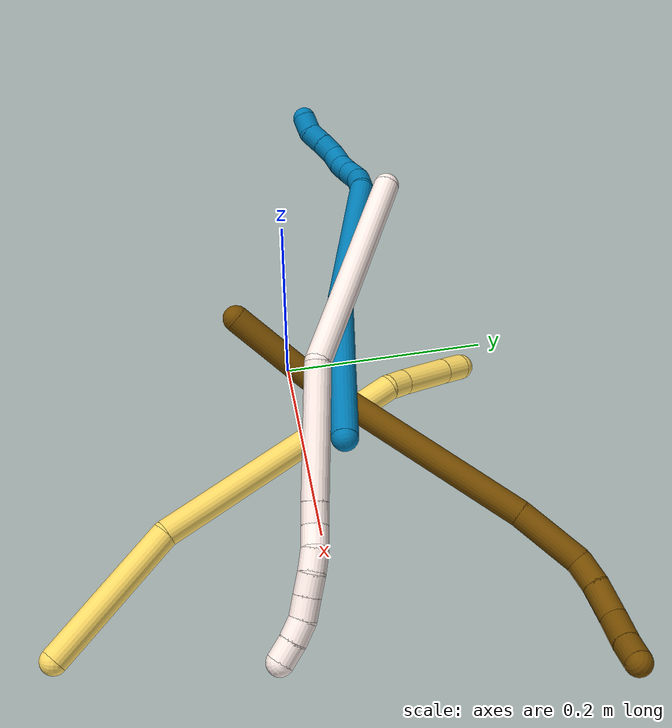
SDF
<sdf version="1.7">
 <world name="default">
  <model name="photoneo_s_sensor">
   <static>1</static>
   <pose>0 0 2 1.57079 1.57079 3.14159</pose>
   <link name="link">
    <inertial><mass>0.1</mass></inertial>
    <sensor name="sensor" type="depth">
     <update_rate>30</update_rate>
     <camera>
      <horizontal_fov>1.22</horizontal_fov>
      <image><width>1920</width><height>1200</height><format>B8G8R8</format></image>
      <clip><near>0.1</near><far>4</far></clip>
      <depth_camera><output>points</output></depth_camera>
     </camera>
     <plugin name="camera_plugin" filename="libgazebo_ros_depth_camera.so">
      <baseline>0.2</baseline>
      <alwaysOn>1</alwaysOn>
      <updateRate>0.0</updateRate>
      <cameraName>camera_ir</cameraName>
      <imageTopicName>/camera/color/image_raw</imageTopicName>
      <cameraInfoTopicName>/camera/color/camera_info</cameraInfoTopicName>
      <depthImageTopicName>/camera/depth/image_raw</depthImageTopicName>
      <depthImageCameraInfoTopicName>/camera/depth/camera_info</depthImageCameraInfoTopicName>
      <pointCloudTopicName>/camera/depth/points</pointCloudTopicName>
      <frameName>fr_optical</frameName>
      <pointCloudCutoff>0.1</pointCloudCutoff>
      <pointCloudCutoffMax>2.0</pointCloudCutoffMax>
      <distortionK1>0</distortionK1>
      <distortionK2>0</distortionK2>
      <distortionK3>0</distortionK3>
      <distortionT1>0</distortionT1>
      <distortionT2>0</distortionT2>
      <CxPrime>0</CxPrime>
      <Cx>0</Cx>
      <Cy>0</Cy>
      <focalLength>0</focalLength>
      <hackBaseline>0</hackBaseline>
     </plugin>
    </sensor>
   </link>
  </model>
  <model name="bin">
   <static>1</static>
   <link name="bottom">
    <collision name="collision-bottom">
     <pose>0 0 -0.01 0 -0 0</pose>
     <geometry><box><size>0.8 0.6 0.02</size></box></geometry>
     <surface>
      <friction><ode><mu>100</mu><mu2>100</mu2></ode></friction>
      <contact><collide_bitmask>65535</collide_bitmask></contact>
     </surface>
    </collision>
   </link>
   <link name="west_wall">
    <collision name="collision-west_wall">
     <pose>-0.41 0 0.1 0 -0 0</pose>
     <geometry><box><size>0.02 0.6 0.2</size></box></geometry>
     <surface>
      <friction><ode><mu>100</mu><mu2>100</mu2></ode></friction>
      <contact><collide_bitmask>65535</collide_bitmask></contact>
     </surface>
    </collision>
   </link>
   <link name="east_wall">
    <collision name="collision-east_wall">
     <pose>0.41 0 0.1 0 -0 0</pose>
     <geometry><box><size>0.02 0.6 0.2</size></box></geometry>
     <surface>
      <friction><ode><mu>100</mu><mu2>100</mu2></ode></friction>
      <contact><collide_bitmask>65535</collide_bitmask></contact>
     </surface>
    </collision>
   </link>
   <link name="south_wall">
    <collision name="collision-south_wall">
     <pose>0 -0.31 0.1 0 -0 0</pose>
     <geometry><box><size>0.8 0.02 0.2</size></box></geometry>
     <surface>
      <friction><ode><mu>100</mu><mu2>100</mu2></ode></friction>
      <contact><collide_bitmask>65535</collide_bitmask></contact>
     </surface>
    </collision>
   </link>
   <link name="north_wall">
    <collision name="collision-north_wall">
     <pose>0 0.31 0.1 0 -0 0</pose>
     <geometry><box><size>0.8 0.02 0.2</size></box></geometry>
     <surface>
      <friction><ode><mu>100</mu><mu2>100</mu2></ode></friction>
      <contact><collide_bitmask>65535</collide_bitmask></contact>
     </surface>
    </collision>
   </link>
  </model>
  <model name="5">
   <static>0</static>
   <link name="5">
    <collision name="collision-cylinder-e_1_1_4">
     <pose>0.016483 0.051902 -0.045094 -2.28612 0.235288 -0.507335</pose>
     <geometry><cylinder><radius>0.0125</radius><length>0.141407</length></cylinder></geometry>
     <surface>
      <friction><ode><mu>1.16</mu><mu2>1.16</mu2><slip1>0</slip1><slip2>0</slip2></ode></friction>
      <contact><ode><kp>1e+06</kp><kd>1</kd><max_vel>0</max_vel><min_depth>0.001</min_depth></ode></contact>
     </surface>
    </collision>
    <visual name="visual-cylinder-e_1_1_4">
     <pose>0.016483 0.051902 -0.045094 -2.28612 0.235288 -0.507335</pose>
     <geometry><cylinder><radius>0.0125</radius><length>0.141407</length></cylinder></geometry>
     <material><ambient>1 0.858824 0.4 1</ambient></material>
    </visual>
    <collision name="collision-cylinder-e_2_4_5">
     <pose>0.043471 0.177914 -0.195742 -2.52946 0.081278 -0.255949</pose>
     <geometry><cylinder><radius>0.0125</radius><length>0.258801</length></cylinder></geometry>
     <surface>
      <friction><ode><mu>1.16</mu><mu2>1.16</mu2><slip1>0</slip1><slip2>0</slip2></ode></friction>
      <contact><ode><kp>1e+06</kp><kd>1</kd><max_vel>0</max_vel><min_depth>0.001</min_depth></ode></contact>
     </surface>
    </collision>
    <visual name="visual-cylinder-e_2_4_5">
     <pose>0.043471 0.177914 -0.195742 -2.52946 0.081278 -0.255949</pose>
     <geometry><cylinder><radius>0.0125</radius><length>0.258801</length></cylinder></geometry>
     <material><ambient>1 0.858824 0.4 1</ambient></material>
    </visual>
    <collision name="collision-cylinder-e_3_5_6">
     <pose>0.050892 0.257125 -0.309924 -2.60759 -0.29858 1.00549</pose>
     <geometry><cylinder><radius>0.0125</radius><length>0.020973</length></cylinder></geometry>
     <surface>
      <friction><ode><mu>1.16</mu><mu2>1.16</mu2><slip1>0</slip1><slip2>0</slip2></ode></friction>
      <contact><ode><kp>1e+06</kp><kd>1</kd><max_vel>0</max_vel><min_depth>0.001</min_depth></ode></contact>
     </surface>
    </collision>
    <visual name="visual-cylinder-e_3_5_6">
     <pose>0.050892 0.257125 -0.309924 -2.60759 -0.29858 1.00549</pose>
     <geometry><cylinder><radius>0.0125</radius><length>0.020973</length></cylinder></geometry>
     <material><ambient>1 0.858824 0.4 1</ambient></material>
    </visual>
    <collision name="collision-cylinder-e_4_6_7">
     <pose>0.040692 0.27398 -0.341637 -2.67069 -0.268066 1.02412</pose>
     <geometry><cylinder><radius>0.0125</radius><length>0.053731</length></cylinder></geometry>
     <surface>
      <friction><ode><mu>1.16</mu><mu2>1.16</mu2><slip1>0</slip1><slip2>0</slip2></ode></friction>
      <contact><ode><kp>1e+06</kp><kd>1</kd><max_vel>0</max_vel><min_depth>0.001</min_depth></ode></contact>
     </surface>
    </collision>
    <visual name="visual-cylinder-e_4_6_7">
     <pose>0.040692 0.27398 -0.341637 -2.67069 -0.268066 1.02412</pose>
     <geometry><cylinder><radius>0.0125</radius><length>0.053731</length></cylinder></geometry>
     <material><ambient>1 0.858824 0.4 1</ambient></material>
    </visual>
    <collision name="collision-cylinder-e_5_7_2">
     <pose>0.030085 0.291081 -0.375521 -2.68173 -0.281973 1.09014</pose>
     <geometry><cylinder><radius>0.0125</radius><length>0.025089</length></cylinder></geometry>
     <surface>
      <friction><ode><mu>1.16</mu><mu2>1.16</mu2><slip1>0</slip1><slip2>0</slip2></ode></friction>
      <contact><ode><kp>1e+06</kp><kd>1</kd><max_vel>0</max_vel><min_depth>0.001</min_depth></ode></contact>
     </surface>
    </collision>
    <visual name="visual-cylinder-e_5_7_2">
     <pose>0.030085 0.291081 -0.375521 -2.68173 -0.281973 1.09014</pose>
     <geometry><cylinder><radius>0.0125</radius><length>0.025089</length></cylinder></geometry>
     <material><ambient>1 0.858824 0.4 1</ambient></material>
    </visual>
    <collision name="collision-sphere-2">
     <pose>0.026595 0.296429 -0.386318 0 -0 0</pose>
     <geometry><sphere><radius>0.0125</radius></sphere></geometry>
     <surface>
      <friction><ode><mu>1.16</mu><mu2>1.16</mu2><slip1>0</slip1><slip2>0</slip2></ode></friction>
      <contact><ode><kp>1e+06</kp><kd>1</kd><max_vel>0</max_vel><min_depth>0.001</min_depth></ode></contact>
     </surface>
    </collision>
    <visual name="visual-sphere-2">
     <pose>0.026595 0.296429 -0.386318 0 -0 0</pose>
     <geometry><sphere><radius>0.0125</radius></sphere></geometry>
     <material><ambient>1 0.858824 0.4 1</ambient></material>
    </visual>
    <collision name="collision-sphere-7">
     <pose>0.033576 0.285733 -0.364724 0 -0 0</pose>
     <geometry><sphere><radius>0.0125</radius></sphere></geometry>
     <surface>
      <friction><ode><mu>1.16</mu><mu2>1.16</mu2><slip1>0</slip1><slip2>0</slip2></ode></friction>
      <contact><ode><kp>1e+06</kp><kd>1</kd><max_vel>0</max_vel><min_depth>0.001</min_depth></ode></contact>
     </surface>
    </collision>
    <visual name="visual-sphere-7">
     <pose>0.033576 0.285733 -0.364724 0 -0 0</pose>
     <geometry><sphere><radius>0.0125</radius></sphere></geometry>
     <material><ambient>1 0.858824 0.4 1</ambient></material>
    </visual>
    <collision name="collision-sphere-6">
     <pose>0.047808 0.262227 -0.318551 0 -0 0</pose>
     <geometry><sphere><radius>0.0125</radius></sphere></geometry>
     <surface>
      <friction><ode><mu>1.16</mu><mu2>1.16</mu2><slip1>0</slip1><slip2>0</slip2></ode></friction>
      <contact><ode><kp>1e+06</kp><kd>1</kd><max_vel>0</max_vel><min_depth>0.001</min_depth></ode></contact>
     </surface>
    </collision>
    <visual name="visual-sphere-6">
     <pose>0.047808 0.262227 -0.318551 0 -0 0</pose>
     <geometry><sphere><radius>0.0125</radius></sphere></geometry>
     <material><ambient>1 0.858824 0.4 1</ambient></material>
    </visual>
    <collision name="collision-sphere-5">
     <pose>0.053977 0.252024 -0.301297 0 -0 0</pose>
     <geometry><sphere><radius>0.0125</radius></sphere></geometry>
     <surface>
      <friction><ode><mu>1.16</mu><mu2>1.16</mu2><slip1>0</slip1><slip2>0</slip2></ode></friction>
      <contact><ode><kp>1e+06</kp><kd>1</kd><max_vel>0</max_vel><min_depth>0.001</min_depth></ode></contact>
     </surface>
    </collision>
    <visual name="visual-sphere-5">
     <pose>0.053977 0.252024 -0.301297 0 -0 0</pose>
     <geometry><sphere><radius>0.0125</radius></sphere></geometry>
     <material><ambient>1 0.858824 0.4 1</ambient></material>
    </visual>
    <collision name="collision-sphere-1">
     <geometry><sphere><radius>0.0125</radius></sphere></geometry>
     <surface>
      <friction><ode><mu>1.16</mu><mu2>1.16</mu2><slip1>0</slip1><slip2>0</slip2></ode></friction>
      <contact><ode><kp>1e+06</kp><kd>1</kd><max_vel>0</max_vel><min_depth>0.001</min_depth></ode></contact>
     </surface>
    </collision>
    <visual name="visual-sphere-1">
     <geometry><sphere><radius>0.0125</radius></sphere></geometry>
     <material><ambient>1 0.858824 0.4 1</ambient></material>
    </visual>
    <collision name="collision-sphere-4">
     <pose>0.032965 0.103805 -0.090187 0 -0 0</pose>
     <geometry><sphere><radius>0.0125</radius></sphere></geometry>
     <surface>
      <friction><ode><mu>1.16</mu><mu2>1.16</mu2><slip1>0</slip1><slip2>0</slip2></ode></friction>
      <contact><ode><kp>1e+06</kp><kd>1</kd><max_vel>0</max_vel><min_depth>0.001</min_depth></ode></contact>
     </surface>
    </collision>
    <visual name="visual-sphere-4">
     <pose>0.032965 0.103805 -0.090187 0 -0 0</pose>
     <geometry><sphere><radius>0.0125</radius></sphere></geometry>
     <material><ambient>1 0.858824 0.4 1</ambient></material>
    </visual>
    <inertial>
     <pose>0.035179 0.161601 -0.182625 0 -0 0</pose>
     <mass>0.5</mass>
     <inertia>
      <ixx>0.001154</ixx>
      <ixy>0</ixy>
      <ixz>0</ixz>
      <iyy>-0.001701</iyy>
      <iyz>0</iyz>
      <izz>-0.001218</izz>
     </inertia>
    </inertial>
   </link>
   <pose>0.289792 -0.245296 0.011496 0.695114 -1.32677 0.77757</pose>
  </model>
  <model name="9">
   <static>0</static>
   <link name="9">
    <collision name="collision-cylinder-e_1_1_4">
     <pose>-0.046738 5.5e-05 -0.074267 -3.14085 -0.561698 3.139</pose>
     <geometry><cylinder><radius>0.0125</radius><length>0.175499</length></cylinder></geometry>
     <surface>
      <friction><ode><mu>1.16</mu><mu2>1.16</mu2><slip1>0</slip1><slip2>0</slip2></ode></friction>
      <contact><ode><kp>1e+06</kp><kd>1</kd><max_vel>0</max_vel><min_depth>0.001</min_depth></ode></contact>
     </surface>
    </collision>
    <visual name="visual-cylinder-e_1_1_4">
     <pose>-0.046738 5.5e-05 -0.074267 -3.14085 -0.561698 3.139</pose>
     <geometry><cylinder><radius>0.0125</radius><length>0.175499</length></cylinder></geometry>
     <material><ambient>0 0.490196 0.709804 1</ambient></material>
    </visual>
    <collision name="collision-cylinder-e_2_4_5">
     <pose>-0.142486 0.013212 -0.219974 -2.96023 -0.593603 2.56359</pose>
     <geometry><cylinder><radius>0.0125</radius><length>0.17524</length></cylinder></geometry>
     <surface>
      <friction><ode><mu>1.16</mu><mu2>1.16</mu2><slip1>0</slip1><slip2>0</slip2></ode></friction>
      <contact><ode><kp>1e+06</kp><kd>1</kd><max_vel>0</max_vel><min_depth>0.001</min_depth></ode></contact>
     </surface>
    </collision>
    <visual name="visual-cylinder-e_2_4_5">
     <pose>-0.142486 0.013212 -0.219974 -2.96023 -0.593603 2.56359</pose>
     <geometry><cylinder><radius>0.0125</radius><length>0.17524</length></cylinder></geometry>
     <material><ambient>0 0.490196 0.709804 1</ambient></material>
    </visual>
    <collision name="collision-cylinder-e_3_5_6">
     <pose>-0.194949 0.025924 -0.304911 3.11284 -0.250368 -2.91405</pose>
     <geometry><cylinder><radius>0.0125</radius><length>0.027876</length></cylinder></geometry>
     <surface>
      <friction><ode><mu>1.16</mu><mu2>1.16</mu2><slip1>0</slip1><slip2>0</slip2></ode></friction>
      <contact><ode><kp>1e+06</kp><kd>1</kd><max_vel>0</max_vel><min_depth>0.001</min_depth></ode></contact>
     </surface>
    </collision>
    <visual name="visual-cylinder-e_3_5_6">
     <pose>-0.194949 0.025924 -0.304911 3.11284 -0.250368 -2.91405</pose>
     <geometry><cylinder><radius>0.0125</radius><length>0.027876</length></cylinder></geometry>
     <material><ambient>0 0.490196 0.709804 1</ambient></material>
    </visual>
    <collision name="collision-cylinder-e_4_6_7">
     <pose>-0.200382 0.021492 -0.327995 2.74241 -0.188052 -0.872482</pose>
     <geometry><cylinder><radius>0.0125</radius><length>0.021181</length></cylinder></geometry>
     <surface>
      <friction><ode><mu>1.16</mu><mu2>1.16</mu2><slip1>0</slip1><slip2>0</slip2></ode></friction>
      <contact><ode><kp>1e+06</kp><kd>1</kd><max_vel>0</max_vel><min_depth>0.001</min_depth></ode></contact>
     </surface>
    </collision>
    <visual name="visual-cylinder-e_4_6_7">
     <pose>-0.200382 0.021492 -0.327995 2.74241 -0.188052 -0.872482</pose>
     <geometry><cylinder><radius>0.0125</radius><length>0.021181</length></cylinder></geometry>
     <material><ambient>0 0.490196 0.709804 1</ambient></material>
    </visual>
    <collision name="collision-cylinder-e_5_7_8">
     <pose>-0.204565 0.013753 -0.346678 2.75574 -0.220676 -1.03177</pose>
     <geometry><cylinder><radius>0.0125</radius><length>0.020127</length></cylinder></geometry>
     <surface>
      <friction><ode><mu>1.16</mu><mu2>1.16</mu2><slip1>0</slip1><slip2>0</slip2></ode></friction>
      <contact><ode><kp>1e+06</kp><kd>1</kd><max_vel>0</max_vel><min_depth>0.001</min_depth></ode></contact>
     </surface>
    </collision>
    <visual name="visual-cylinder-e_5_7_8">
     <pose>-0.204565 0.013753 -0.346678 2.75574 -0.220676 -1.03177</pose>
     <geometry><cylinder><radius>0.0125</radius><length>0.020127</length></cylinder></geometry>
     <material><ambient>0 0.490196 0.709804 1</ambient></material>
    </visual>
    <collision name="collision-cylinder-e_6_8_9">
     <pose>-0.211166 0.006414 -0.364019 2.7254 -0.454041 -1.66051</pose>
     <geometry><cylinder><radius>0.0125</radius><length>0.020056</length></cylinder></geometry>
     <surface>
      <friction><ode><mu>1.16</mu><mu2>1.16</mu2><slip1>0</slip1><slip2>0</slip2></ode></friction>
      <contact><ode><kp>1e+06</kp><kd>1</kd><max_vel>0</max_vel><min_depth>0.001</min_depth></ode></contact>
     </surface>
    </collision>
    <visual name="visual-cylinder-e_6_8_9">
     <pose>-0.211166 0.006414 -0.364019 2.7254 -0.454041 -1.66051</pose>
     <geometry><cylinder><radius>0.0125</radius><length>0.020056</length></cylinder></geometry>
     <material><ambient>0 0.490196 0.709804 1</ambient></material>
    </visual>
    <collision name="collision-cylinder-e_7_9_10">
     <pose>-0.220314 -0.004052 -0.377825 2.25484 -0.494773 -0.977527</pose>
     <geometry><cylinder><radius>0.0125</radius><length>0.020007</length></cylinder></geometry>
     <surface>
      <friction><ode><mu>1.16</mu><mu2>1.16</mu2><slip1>0</slip1><slip2>0</slip2></ode></friction>
      <contact><ode><kp>1e+06</kp><kd>1</kd><max_vel>0</max_vel><min_depth>0.001</min_depth></ode></contact>
     </surface>
    </collision>
    <visual name="visual-cylinder-e_7_9_10">
     <pose>-0.220314 -0.004052 -0.377825 2.25484 -0.494773 -0.977527</pose>
     <geometry><cylinder><radius>0.0125</radius><length>0.020007</length></cylinder></geometry>
     <material><ambient>0 0.490196 0.709804 1</ambient></material>
    </visual>
    <collision name="collision-cylinder-e_8_10_11">
     <pose>-0.229337 -0.018 -0.388967 2.23519 -0.441159 -0.862967</pose>
     <geometry><cylinder><radius>0.0125</radius><length>0.020014</length></cylinder></geometry>
     <surface>
      <friction><ode><mu>1.16</mu><mu2>1.16</mu2><slip1>0</slip1><slip2>0</slip2></ode></friction>
      <contact><ode><kp>1e+06</kp><kd>1</kd><max_vel>0</max_vel><min_depth>0.001</min_depth></ode></contact>
     </surface>
    </collision>
    <visual name="visual-cylinder-e_8_10_11">
     <pose>-0.229337 -0.018 -0.388967 2.23519 -0.441159 -0.862967</pose>
     <geometry><cylinder><radius>0.0125</radius><length>0.020014</length></cylinder></geometry>
     <material><ambient>0 0.490196 0.709804 1</ambient></material>
    </visual>
    <collision name="collision-cylinder-e_9_11_2">
     <pose>-0.240498 -0.029132 -0.400587 2.55573 -0.75982 -1.84779</pose>
     <geometry><cylinder><radius>0.0125</radius><length>0.02</length></cylinder></geometry>
     <surface>
      <friction><ode><mu>1.16</mu><mu2>1.16</mu2><slip1>0</slip1><slip2>0</slip2></ode></friction>
      <contact><ode><kp>1e+06</kp><kd>1</kd><max_vel>0</max_vel><min_depth>0.001</min_depth></ode></contact>
     </surface>
    </collision>
    <visual name="visual-cylinder-e_9_11_2">
     <pose>-0.240498 -0.029132 -0.400587 2.55573 -0.75982 -1.84779</pose>
     <geometry><cylinder><radius>0.0125</radius><length>0.02</length></cylinder></geometry>
     <material><ambient>0 0.490196 0.709804 1</ambient></material>
    </visual>
    <collision name="collision-sphere-2">
     <pose>-0.247386 -0.03314 -0.406628 0 -0 0</pose>
     <geometry><sphere><radius>0.0125</radius></sphere></geometry>
     <surface>
      <friction><ode><mu>1.16</mu><mu2>1.16</mu2><slip1>0</slip1><slip2>0</slip2></ode></friction>
      <contact><ode><kp>1e+06</kp><kd>1</kd><max_vel>0</max_vel><min_depth>0.001</min_depth></ode></contact>
     </surface>
    </collision>
    <visual name="visual-sphere-2">
     <pose>-0.247386 -0.03314 -0.406628 0 -0 0</pose>
     <geometry><sphere><radius>0.0125</radius></sphere></geometry>
     <material><ambient>0 0.490196 0.709804 1</ambient></material>
    </visual>
    <collision name="collision-sphere-11">
     <pose>-0.23361 -0.025124 -0.394547 0 -0 0</pose>
     <geometry><sphere><radius>0.0125</radius></sphere></geometry>
     <surface>
      <friction><ode><mu>1.16</mu><mu2>1.16</mu2><slip1>0</slip1><slip2>0</slip2></ode></friction>
      <contact><ode><kp>1e+06</kp><kd>1</kd><max_vel>0</max_vel><min_depth>0.001</min_depth></ode></contact>
     </surface>
    </collision>
    <visual name="visual-sphere-11">
     <pose>-0.23361 -0.025124 -0.394547 0 -0 0</pose>
     <geometry><sphere><radius>0.0125</radius></sphere></geometry>
     <material><ambient>0 0.490196 0.709804 1</ambient></material>
    </visual>
    <collision name="collision-sphere-10">
     <pose>-0.225064 -0.010876 -0.383388 0 -0 0</pose>
     <geometry><sphere><radius>0.0125</radius></sphere></geometry>
     <surface>
      <friction><ode><mu>1.16</mu><mu2>1.16</mu2><slip1>0</slip1><slip2>0</slip2></ode></friction>
      <contact><ode><kp>1e+06</kp><kd>1</kd><max_vel>0</max_vel><min_depth>0.001</min_depth></ode></contact>
     </surface>
    </collision>
    <visual name="visual-sphere-10">
     <pose>-0.225064 -0.010876 -0.383388 0 -0 0</pose>
     <geometry><sphere><radius>0.0125</radius></sphere></geometry>
     <material><ambient>0 0.490196 0.709804 1</ambient></material>
    </visual>
    <collision name="collision-sphere-9">
     <pose>-0.215564 0.002771 -0.372261 0 -0 0</pose>
     <geometry><sphere><radius>0.0125</radius></sphere></geometry>
     <surface>
      <friction><ode><mu>1.16</mu><mu2>1.16</mu2><slip1>0</slip1><slip2>0</slip2></ode></friction>
      <contact><ode><kp>1e+06</kp><kd>1</kd><max_vel>0</max_vel><min_depth>0.001</min_depth></ode></contact>
     </surface>
    </collision>
    <visual name="visual-sphere-9">
     <pose>-0.215564 0.002771 -0.372261 0 -0 0</pose>
     <geometry><sphere><radius>0.0125</radius></sphere></geometry>
     <material><ambient>0 0.490196 0.709804 1</ambient></material>
    </visual>
    <collision name="collision-sphere-4">
     <pose>-0.093475 0.000111 -0.148534 0 -0 0</pose>
     <geometry><sphere><radius>0.0125</radius></sphere></geometry>
     <surface>
      <friction><ode><mu>1.16</mu><mu2>1.16</mu2><slip1>0</slip1><slip2>0</slip2></ode></friction>
      <contact><ode><kp>1e+06</kp><kd>1</kd><max_vel>0</max_vel><min_depth>0.001</min_depth></ode></contact>
     </surface>
    </collision>
    <visual name="visual-sphere-4">
     <pose>-0.093475 0.000111 -0.148534 0 -0 0</pose>
     <geometry><sphere><radius>0.0125</radius></sphere></geometry>
     <material><ambient>0 0.490196 0.709804 1</ambient></material>
    </visual>
    <collision name="collision-sphere-1">
     <geometry><sphere><radius>0.0125</radius></sphere></geometry>
     <surface>
      <friction><ode><mu>1.16</mu><mu2>1.16</mu2><slip1>0</slip1><slip2>0</slip2></ode></friction>
      <contact><ode><kp>1e+06</kp><kd>1</kd><max_vel>0</max_vel><min_depth>0.001</min_depth></ode></contact>
     </surface>
    </collision>
    <visual name="visual-sphere-1">
     <geometry><sphere><radius>0.0125</radius></sphere></geometry>
     <material><ambient>0 0.490196 0.709804 1</ambient></material>
    </visual>
    <collision name="collision-sphere-8">
     <pose>-0.206768 0.010057 -0.355776 0 -0 0</pose>
     <geometry><sphere><radius>0.0125</radius></sphere></geometry>
     <surface>
      <friction><ode><mu>1.16</mu><mu2>1.16</mu2><slip1>0</slip1><slip2>0</slip2></ode></friction>
      <contact><ode><kp>1e+06</kp><kd>1</kd><max_vel>0</max_vel><min_depth>0.001</min_depth></ode></contact>
     </surface>
    </collision>
    <visual name="visual-sphere-8">
     <pose>-0.206768 0.010057 -0.355776 0 -0 0</pose>
     <geometry><sphere><radius>0.0125</radius></sphere></geometry>
     <material><ambient>0 0.490196 0.709804 1</ambient></material>
    </visual>
    <collision name="collision-sphere-5">
     <pose>-0.191496 0.026312 -0.291414 0 -0 0</pose>
     <geometry><sphere><radius>0.0125</radius></sphere></geometry>
     <surface>
      <friction><ode><mu>1.16</mu><mu2>1.16</mu2><slip1>0</slip1><slip2>0</slip2></ode></friction>
      <contact><ode><kp>1e+06</kp><kd>1</kd><max_vel>0</max_vel><min_depth>0.001</min_depth></ode></contact>
     </surface>
    </collision>
    <visual name="visual-sphere-5">
     <pose>-0.191496 0.026312 -0.291414 0 -0 0</pose>
     <geometry><sphere><radius>0.0125</radius></sphere></geometry>
     <material><ambient>0 0.490196 0.709804 1</ambient></material>
    </visual>
    <collision name="collision-sphere-6">
     <pose>-0.198402 0.025536 -0.318409 0 -0 0</pose>
     <geometry><sphere><radius>0.0125</radius></sphere></geometry>
     <surface>
      <friction><ode><mu>1.16</mu><mu2>1.16</mu2><slip1>0</slip1><slip2>0</slip2></ode></friction>
      <contact><ode><kp>1e+06</kp><kd>1</kd><max_vel>0</max_vel><min_depth>0.001</min_depth></ode></contact>
     </surface>
    </collision>
    <visual name="visual-sphere-6">
     <pose>-0.198402 0.025536 -0.318409 0 -0 0</pose>
     <geometry><sphere><radius>0.0125</radius></sphere></geometry>
     <material><ambient>0 0.490196 0.709804 1</ambient></material>
    </visual>
    <collision name="collision-sphere-7">
     <pose>-0.202362 0.017449 -0.337581 0 -0 0</pose>
     <geometry><sphere><radius>0.0125</radius></sphere></geometry>
     <surface>
      <friction><ode><mu>1.16</mu><mu2>1.16</mu2><slip1>0</slip1><slip2>0</slip2></ode></friction>
      <contact><ode><kp>1e+06</kp><kd>1</kd><max_vel>0</max_vel><min_depth>0.001</min_depth></ode></contact>
     </surface>
    </collision>
    <visual name="visual-sphere-7">
     <pose>-0.202362 0.017449 -0.337581 0 -0 0</pose>
     <geometry><sphere><radius>0.0125</radius></sphere></geometry>
     <material><ambient>0 0.490196 0.709804 1</ambient></material>
    </visual>
    <inertial>
     <pose>-0.130021 0.005769 -0.209326 0 -0 0</pose>
     <mass>0.5</mass>
     <inertia>
      <ixx>-0.000523</ixx>
      <ixy>0</ixy>
      <ixz>0</ixz>
      <iyy>0.001057</iyy>
      <iyz>0</iyz>
      <izz>0.000407</izz>
     </inertia>
    </inertial>
   </link>
   <pose>0.16704 0.027477 0.100318 -0.413696 0.900407 -0.504666</pose>
  </model>
  <model name="11">
   <static>0</static>
   <link name="11">
    <collision name="collision-cylinder-e_1_1_4">
     <pose>0.11026 0.007625 -0.034986 -2.92701 1.25679 -2.8473</pose>
     <geometry><cylinder><radius>0.0125</radius><length>0.231857</length></cylinder></geometry>
     <surface>
      <friction><ode><mu>1.16</mu><mu2>1.16</mu2><slip1>0</slip1><slip2>0</slip2></ode></friction>
      <contact><ode><kp>1e+06</kp><kd>1</kd><max_vel>0</max_vel><min_depth>0.001</min_depth></ode></contact>
     </surface>
    </collision>
    <visual name="visual-cylinder-e_1_1_4">
     <pose>0.11026 0.007625 -0.034986 -2.92701 1.25679 -2.8473</pose>
     <geometry><cylinder><radius>0.0125</radius><length>0.231857</length></cylinder></geometry>
     <material><ambient>1 0.933333 0.909804 1</ambient></material>
    </visual>
    <collision name="collision-cylinder-e_2_4_5">
     <pose>0.279879 -0.005527 -0.072723 1.7024 1.23139 1.35828</pose>
     <geometry><cylinder><radius>0.0125</radius><length>0.125901</length></cylinder></geometry>
     <surface>
      <friction><ode><mu>1.16</mu><mu2>1.16</mu2><slip1>0</slip1><slip2>0</slip2></ode></friction>
      <contact><ode><kp>1e+06</kp><kd>1</kd><max_vel>0</max_vel><min_depth>0.001</min_depth></ode></contact>
     </surface>
    </collision>
    <visual name="visual-cylinder-e_2_4_5">
     <pose>0.279879 -0.005527 -0.072723 1.7024 1.23139 1.35828</pose>
     <geometry><cylinder><radius>0.0125</radius><length>0.125901</length></cylinder></geometry>
     <material><ambient>1 0.933333 0.909804 1</ambient></material>
    </visual>
    <collision name="collision-cylinder-e_3_5_6">
     <pose>0.348999 -0.029973 -0.075998 1.71285 1.20786 1.34412</pose>
     <geometry><cylinder><radius>0.0125</radius><length>0.020883</length></cylinder></geometry>
     <surface>
      <friction><ode><mu>1.16</mu><mu2>1.16</mu2><slip1>0</slip1><slip2>0</slip2></ode></friction>
      <contact><ode><kp>1e+06</kp><kd>1</kd><max_vel>0</max_vel><min_depth>0.001</min_depth></ode></contact>
     </surface>
    </collision>
    <visual name="visual-cylinder-e_3_5_6">
     <pose>0.348999 -0.029973 -0.075998 1.71285 1.20786 1.34412</pose>
     <geometry><cylinder><radius>0.0125</radius><length>0.020883</length></cylinder></geometry>
     <material><ambient>1 0.933333 0.909804 1</ambient></material>
    </visual>
    <collision name="collision-cylinder-e_4_6_7">
     <pose>0.368455 -0.036258 -0.079832 2.47287 1.16034 2.16679</pose>
     <geometry><cylinder><radius>0.0125</radius><length>0.021145</length></cylinder></geometry>
     <surface>
      <friction><ode><mu>1.16</mu><mu2>1.16</mu2><slip1>0</slip1><slip2>0</slip2></ode></friction>
      <contact><ode><kp>1e+06</kp><kd>1</kd><max_vel>0</max_vel><min_depth>0.001</min_depth></ode></contact>
     </surface>
    </collision>
    <visual name="visual-cylinder-e_4_6_7">
     <pose>0.368455 -0.036258 -0.079832 2.47287 1.16034 2.16679</pose>
     <geometry><cylinder><radius>0.0125</radius><length>0.021145</length></cylinder></geometry>
     <material><ambient>1 0.933333 0.909804 1</ambient></material>
    </visual>
    <collision name="collision-cylinder-e_5_7_8">
     <pose>0.38798 -0.04105 -0.083576 1.76741 1.34878 1.54483</pose>
     <geometry><cylinder><radius>0.0125</radius><length>0.020158</length></cylinder></geometry>
     <surface>
      <friction><ode><mu>1.16</mu><mu2>1.16</mu2><slip1>0</slip1><slip2>0</slip2></ode></friction>
      <contact><ode><kp>1e+06</kp><kd>1</kd><max_vel>0</max_vel><min_depth>0.001</min_depth></ode></contact>
     </surface>
    </collision>
    <visual name="visual-cylinder-e_5_7_8">
     <pose>0.38798 -0.04105 -0.083576 1.76741 1.34878 1.54483</pose>
     <geometry><cylinder><radius>0.0125</radius><length>0.020158</length></cylinder></geometry>
     <material><ambient>1 0.933333 0.909804 1</ambient></material>
    </visual>
    <collision name="collision-cylinder-e_6_8_9">
     <pose>0.407421 -0.04535 -0.082224 0.871861 1.28972 0.673979</pose>
     <geometry><cylinder><radius>0.0125</radius><length>0.020003</length></cylinder></geometry>
     <surface>
      <friction><ode><mu>1.16</mu><mu2>1.16</mu2><slip1>0</slip1><slip2>0</slip2></ode></friction>
      <contact><ode><kp>1e+06</kp><kd>1</kd><max_vel>0</max_vel><min_depth>0.001</min_depth></ode></contact>
     </surface>
    </collision>
    <visual name="visual-cylinder-e_6_8_9">
     <pose>0.407421 -0.04535 -0.082224 0.871861 1.28972 0.673979</pose>
     <geometry><cylinder><radius>0.0125</radius><length>0.020003</length></cylinder></geometry>
     <material><ambient>1 0.933333 0.909804 1</ambient></material>
    </visual>
    <collision name="collision-cylinder-e_7_9_10">
     <pose>0.426711 -0.049639 -0.079166 1.03895 1.31696 0.833097</pose>
     <geometry><cylinder><radius>0.0125</radius><length>0.020003</length></cylinder></geometry>
     <surface>
      <friction><ode><mu>1.16</mu><mu2>1.16</mu2><slip1>0</slip1><slip2>0</slip2></ode></friction>
      <contact><ode><kp>1e+06</kp><kd>1</kd><max_vel>0</max_vel><min_depth>0.001</min_depth></ode></contact>
     </surface>
    </collision>
    <visual name="visual-cylinder-e_7_9_10">
     <pose>0.426711 -0.049639 -0.079166 1.03895 1.31696 0.833097</pose>
     <geometry><cylinder><radius>0.0125</radius><length>0.020003</length></cylinder></geometry>
     <material><ambient>1 0.933333 0.909804 1</ambient></material>
    </visual>
    <collision name="collision-cylinder-e_8_10_11">
     <pose>0.446276 -0.051396 -0.076308 -0.251788 1.40684 -0.21387</pose>
     <geometry><cylinder><radius>0.0125</radius><length>0.020037</length></cylinder></geometry>
     <surface>
      <friction><ode><mu>1.16</mu><mu2>1.16</mu2><slip1>0</slip1><slip2>0</slip2></ode></friction>
      <contact><ode><kp>1e+06</kp><kd>1</kd><max_vel>0</max_vel><min_depth>0.001</min_depth></ode></contact>
     </surface>
    </collision>
    <visual name="visual-cylinder-e_8_10_11">
     <pose>0.446276 -0.051396 -0.076308 -0.251788 1.40684 -0.21387</pose>
     <geometry><cylinder><radius>0.0125</radius><length>0.020037</length></cylinder></geometry>
     <material><ambient>1 0.933333 0.909804 1</ambient></material>
    </visual>
    <collision name="collision-cylinder-e_9_11_2">
     <pose>0.465852 -0.049563 -0.072679 -0.608727 1.3189 -0.477734</pose>
     <geometry><cylinder><radius>0.0125</radius><length>0.020014</length></cylinder></geometry>
     <surface>
      <friction><ode><mu>1.16</mu><mu2>1.16</mu2><slip1>0</slip1><slip2>0</slip2></ode></friction>
      <contact><ode><kp>1e+06</kp><kd>1</kd><max_vel>0</max_vel><min_depth>0.001</min_depth></ode></contact>
     </surface>
    </collision>
    <visual name="visual-cylinder-e_9_11_2">
     <pose>0.465852 -0.049563 -0.072679 -0.608727 1.3189 -0.477734</pose>
     <geometry><cylinder><radius>0.0125</radius><length>0.020014</length></cylinder></geometry>
     <material><ambient>1 0.933333 0.909804 1</ambient></material>
    </visual>
    <collision name="collision-sphere-2">
     <pose>0.475543 -0.048136 -0.070632 0 -0 0</pose>
     <geometry><sphere><radius>0.0125</radius></sphere></geometry>
     <surface>
      <friction><ode><mu>1.16</mu><mu2>1.16</mu2><slip1>0</slip1><slip2>0</slip2></ode></friction>
      <contact><ode><kp>1e+06</kp><kd>1</kd><max_vel>0</max_vel><min_depth>0.001</min_depth></ode></contact>
     </surface>
    </collision>
    <visual name="visual-sphere-2">
     <pose>0.475543 -0.048136 -0.070632 0 -0 0</pose>
     <geometry><sphere><radius>0.0125</radius></sphere></geometry>
     <material><ambient>1 0.933333 0.909804 1</ambient></material>
    </visual>
    <collision name="collision-sphere-11">
     <pose>0.45616 -0.050989 -0.074725 0 -0 0</pose>
     <geometry><sphere><radius>0.0125</radius></sphere></geometry>
     <surface>
      <friction><ode><mu>1.16</mu><mu2>1.16</mu2><slip1>0</slip1><slip2>0</slip2></ode></friction>
      <contact><ode><kp>1e+06</kp><kd>1</kd><max_vel>0</max_vel><min_depth>0.001</min_depth></ode></contact>
     </surface>
    </collision>
    <visual name="visual-sphere-11">
     <pose>0.45616 -0.050989 -0.074725 0 -0 0</pose>
     <geometry><sphere><radius>0.0125</radius></sphere></geometry>
     <material><ambient>1 0.933333 0.909804 1</ambient></material>
    </visual>
    <collision name="collision-sphere-10">
     <pose>0.436392 -0.051804 -0.077892 0 -0 0</pose>
     <geometry><sphere><radius>0.0125</radius></sphere></geometry>
     <surface>
      <friction><ode><mu>1.16</mu><mu2>1.16</mu2><slip1>0</slip1><slip2>0</slip2></ode></friction>
      <contact><ode><kp>1e+06</kp><kd>1</kd><max_vel>0</max_vel><min_depth>0.001</min_depth></ode></contact>
     </surface>
    </collision>
    <visual name="visual-sphere-10">
     <pose>0.436392 -0.051804 -0.077892 0 -0 0</pose>
     <geometry><sphere><radius>0.0125</radius></sphere></geometry>
     <material><ambient>1 0.933333 0.909804 1</ambient></material>
    </visual>
    <collision name="collision-sphere-9">
     <pose>0.41703 -0.047474 -0.080439 0 -0 0</pose>
     <geometry><sphere><radius>0.0125</radius></sphere></geometry>
     <surface>
      <friction><ode><mu>1.16</mu><mu2>1.16</mu2><slip1>0</slip1><slip2>0</slip2></ode></friction>
      <contact><ode><kp>1e+06</kp><kd>1</kd><max_vel>0</max_vel><min_depth>0.001</min_depth></ode></contact>
     </surface>
    </collision>
    <visual name="visual-sphere-9">
     <pose>0.41703 -0.047474 -0.080439 0 -0 0</pose>
     <geometry><sphere><radius>0.0125</radius></sphere></geometry>
     <material><ambient>1 0.933333 0.909804 1</ambient></material>
    </visual>
    <collision name="collision-sphere-4">
     <pose>0.22052 0.015249 -0.069973 0 -0 0</pose>
     <geometry><sphere><radius>0.0125</radius></sphere></geometry>
     <surface>
      <friction><ode><mu>1.16</mu><mu2>1.16</mu2><slip1>0</slip1><slip2>0</slip2></ode></friction>
      <contact><ode><kp>1e+06</kp><kd>1</kd><max_vel>0</max_vel><min_depth>0.001</min_depth></ode></contact>
     </surface>
    </collision>
    <visual name="visual-sphere-4">
     <pose>0.22052 0.015249 -0.069973 0 -0 0</pose>
     <geometry><sphere><radius>0.0125</radius></sphere></geometry>
     <material><ambient>1 0.933333 0.909804 1</ambient></material>
    </visual>
    <collision name="collision-sphere-1">
     <geometry><sphere><radius>0.0125</radius></sphere></geometry>
     <surface>
      <friction><ode><mu>1.16</mu><mu2>1.16</mu2><slip1>0</slip1><slip2>0</slip2></ode></friction>
      <contact><ode><kp>1e+06</kp><kd>1</kd><max_vel>0</max_vel><min_depth>0.001</min_depth></ode></contact>
     </surface>
    </collision>
    <visual name="visual-sphere-1">
     <geometry><sphere><radius>0.0125</radius></sphere></geometry>
     <material><ambient>1 0.933333 0.909804 1</ambient></material>
    </visual>
    <collision name="collision-sphere-8">
     <pose>0.397812 -0.043227 -0.084009 0 -0 0</pose>
     <geometry><sphere><radius>0.0125</radius></sphere></geometry>
     <surface>
      <friction><ode><mu>1.16</mu><mu2>1.16</mu2><slip1>0</slip1><slip2>0</slip2></ode></friction>
      <contact><ode><kp>1e+06</kp><kd>1</kd><max_vel>0</max_vel><min_depth>0.001</min_depth></ode></contact>
     </surface>
    </collision>
    <visual name="visual-sphere-8">
     <pose>0.397812 -0.043227 -0.084009 0 -0 0</pose>
     <geometry><sphere><radius>0.0125</radius></sphere></geometry>
     <material><ambient>1 0.933333 0.909804 1</ambient></material>
    </visual>
    <collision name="collision-sphere-5">
     <pose>0.339238 -0.026304 -0.075473 0 -0 0</pose>
     <geometry><sphere><radius>0.0125</radius></sphere></geometry>
     <surface>
      <friction><ode><mu>1.16</mu><mu2>1.16</mu2><slip1>0</slip1><slip2>0</slip2></ode></friction>
      <contact><ode><kp>1e+06</kp><kd>1</kd><max_vel>0</max_vel><min_depth>0.001</min_depth></ode></contact>
     </surface>
    </collision>
    <visual name="visual-sphere-5">
     <pose>0.339238 -0.026304 -0.075473 0 -0 0</pose>
     <geometry><sphere><radius>0.0125</radius></sphere></geometry>
     <material><ambient>1 0.933333 0.909804 1</ambient></material>
    </visual>
    <collision name="collision-sphere-6">
     <pose>0.35876 -0.033643 -0.076522 0 -0 0</pose>
     <geometry><sphere><radius>0.0125</radius></sphere></geometry>
     <surface>
      <friction><ode><mu>1.16</mu><mu2>1.16</mu2><slip1>0</slip1><slip2>0</slip2></ode></friction>
      <contact><ode><kp>1e+06</kp><kd>1</kd><max_vel>0</max_vel><min_depth>0.001</min_depth></ode></contact>
     </surface>
    </collision>
    <visual name="visual-sphere-6">
     <pose>0.35876 -0.033643 -0.076522 0 -0 0</pose>
     <geometry><sphere><radius>0.0125</radius></sphere></geometry>
     <material><ambient>1 0.933333 0.909804 1</ambient></material>
    </visual>
    <collision name="collision-sphere-7">
     <pose>0.378149 -0.038874 -0.083142 0 -0 0</pose>
     <geometry><sphere><radius>0.0125</radius></sphere></geometry>
     <surface>
      <friction><ode><mu>1.16</mu><mu2>1.16</mu2><slip1>0</slip1><slip2>0</slip2></ode></friction>
      <contact><ode><kp>1e+06</kp><kd>1</kd><max_vel>0</max_vel><min_depth>0.001</min_depth></ode></contact>
     </surface>
    </collision>
    <visual name="visual-sphere-7">
     <pose>0.378149 -0.038874 -0.083142 0 -0 0</pose>
     <geometry><sphere><radius>0.0125</radius></sphere></geometry>
     <material><ambient>1 0.933333 0.909804 1</ambient></material>
    </visual>
    <inertial>
     <pose>0.237304 -0.01014 -0.056879 0 -0 0</pose>
     <mass>0.5</mass>
     <inertia>
      <ixx>-0.000296</ixx>
      <ixy>0</ixy>
      <ixz>0</ixz>
      <iyy>0.001163</iyy>
      <iyz>0</iyz>
      <izz>-0.001184</izz>
     </inertia>
    </inertial>
   </link>
   <pose>-0.105835 0.11979 0.13959 2.65968 0.354079 -0.551542</pose>
  </model>
  <model name="12">
   <static>0</static>
   <link name="12">
    <collision name="collision-cylinder-e_1_1_4">
     <pose>0.00355 0.015749 0.041002 -0.36673 0.080651 -0.014964</pose>
     <geometry><cylinder><radius>0.0125</radius><length>0.088132</length></cylinder></geometry>
     <surface>
      <friction><ode><mu>1.16</mu><mu2>1.16</mu2><slip1>0</slip1><slip2>0</slip2></ode></friction>
      <contact><ode><kp>1e+06</kp><kd>1</kd><max_vel>0</max_vel><min_depth>0.001</min_depth></ode></contact>
     </surface>
    </collision>
    <visual name="visual-cylinder-e_1_1_4">
     <pose>0.00355 0.015749 0.041002 -0.36673 0.080651 -0.014964</pose>
     <geometry><cylinder><radius>0.0125</radius><length>0.088132</length></cylinder></geometry>
     <material><ambient>0.466667 0.301961 0 1</ambient></material>
    </visual>
    <collision name="collision-cylinder-e_2_4_5">
     <pose>0.035807 0.098428 0.171202 -0.643723 0.251957 -0.084414</pose>
     <geometry><cylinder><radius>0.0125</radius><length>0.230303</length></cylinder></geometry>
     <surface>
      <friction><ode><mu>1.16</mu><mu2>1.16</mu2><slip1>0</slip1><slip2>0</slip2></ode></friction>
      <contact><ode><kp>1e+06</kp><kd>1</kd><max_vel>0</max_vel><min_depth>0.001</min_depth></ode></contact>
     </surface>
    </collision>
    <visual name="visual-cylinder-e_2_4_5">
     <pose>0.035807 0.098428 0.171202 -0.643723 0.251957 -0.084414</pose>
     <geometry><cylinder><radius>0.0125</radius><length>0.230303</length></cylinder></geometry>
     <material><ambient>0.466667 0.301961 0 1</ambient></material>
    </visual>
    <collision name="collision-cylinder-e_3_5_6">
     <pose>0.069668 0.186784 0.285132 -0.713939 0.156214 -0.058362</pose>
     <geometry><cylinder><radius>0.0125</radius><length>0.066253</length></cylinder></geometry>
     <surface>
      <friction><ode><mu>1.16</mu><mu2>1.16</mu2><slip1>0</slip1><slip2>0</slip2></ode></friction>
      <contact><ode><kp>1e+06</kp><kd>1</kd><max_vel>0</max_vel><min_depth>0.001</min_depth></ode></contact>
     </surface>
    </collision>
    <visual name="visual-cylinder-e_3_5_6">
     <pose>0.069668 0.186784 0.285132 -0.713939 0.156214 -0.058362</pose>
     <geometry><cylinder><radius>0.0125</radius><length>0.066253</length></cylinder></geometry>
     <material><ambient>0.466667 0.301961 0 1</ambient></material>
    </visual>
    <collision name="collision-cylinder-e_4_6_7">
     <pose>0.074107 0.220367 0.315633 -1.12762 -0.053097 0.033577</pose>
     <geometry><cylinder><radius>0.0125</radius><length>0.026947</length></cylinder></geometry>
     <surface>
      <friction><ode><mu>1.16</mu><mu2>1.16</mu2><slip1>0</slip1><slip2>0</slip2></ode></friction>
      <contact><ode><kp>1e+06</kp><kd>1</kd><max_vel>0</max_vel><min_depth>0.001</min_depth></ode></contact>
     </surface>
    </collision>
    <visual name="visual-cylinder-e_4_6_7">
     <pose>0.074107 0.220367 0.315633 -1.12762 -0.053097 0.033577</pose>
     <geometry><cylinder><radius>0.0125</radius><length>0.026947</length></cylinder></geometry>
     <material><ambient>0.466667 0.301961 0 1</ambient></material>
    </visual>
    <collision name="collision-cylinder-e_5_7_8">
     <pose>0.070591 0.246898 0.328553 -1.10923 -0.172718 0.107159</pose>
     <geometry><cylinder><radius>0.0125</radius><length>0.032598</length></cylinder></geometry>
     <surface>
      <friction><ode><mu>1.16</mu><mu2>1.16</mu2><slip1>0</slip1><slip2>0</slip2></ode></friction>
      <contact><ode><kp>1e+06</kp><kd>1</kd><max_vel>0</max_vel><min_depth>0.001</min_depth></ode></contact>
     </surface>
    </collision>
    <visual name="visual-cylinder-e_5_7_8">
     <pose>0.070591 0.246898 0.328553 -1.10923 -0.172718 0.107159</pose>
     <geometry><cylinder><radius>0.0125</radius><length>0.032598</length></cylinder></geometry>
     <material><ambient>0.466667 0.301961 0 1</ambient></material>
    </visual>
    <collision name="collision-cylinder-e_6_8_9">
     <pose>0.066919 0.277201 0.335562 -1.57968 -0.054629 0.055116</pose>
     <geometry><cylinder><radius>0.0125</radius><length>0.031904</length></cylinder></geometry>
     <surface>
      <friction><ode><mu>1.16</mu><mu2>1.16</mu2><slip1>0</slip1><slip2>0</slip2></ode></friction>
      <contact><ode><kp>1e+06</kp><kd>1</kd><max_vel>0</max_vel><min_depth>0.001</min_depth></ode></contact>
     </surface>
    </collision>
    <visual name="visual-cylinder-e_6_8_9">
     <pose>0.066919 0.277201 0.335562 -1.57968 -0.054629 0.055116</pose>
     <geometry><cylinder><radius>0.0125</radius><length>0.031904</length></cylinder></geometry>
     <material><ambient>0.466667 0.301961 0 1</ambient></material>
    </visual>
    <collision name="collision-cylinder-e_7_9_2">
     <pose>0.066307 0.305056 0.335238 -1.58608 0.021769 -0.022104</pose>
     <geometry><cylinder><radius>0.0125</radius><length>0.023863</length></cylinder></geometry>
     <surface>
      <friction><ode><mu>1.16</mu><mu2>1.16</mu2><slip1>0</slip1><slip2>0</slip2></ode></friction>
      <contact><ode><kp>1e+06</kp><kd>1</kd><max_vel>0</max_vel><min_depth>0.001</min_depth></ode></contact>
     </surface>
    </collision>
    <visual name="visual-cylinder-e_7_9_2">
     <pose>0.066307 0.305056 0.335238 -1.58608 0.021769 -0.022104</pose>
     <geometry><cylinder><radius>0.0125</radius><length>0.023863</length></cylinder></geometry>
     <material><ambient>0.466667 0.301961 0 1</ambient></material>
    </visual>
    <collision name="collision-sphere-2">
     <pose>0.066567 0.316984 0.335056 0 -0 0</pose>
     <geometry><sphere><radius>0.0125</radius></sphere></geometry>
     <surface>
      <friction><ode><mu>1.16</mu><mu2>1.16</mu2><slip1>0</slip1><slip2>0</slip2></ode></friction>
      <contact><ode><kp>1e+06</kp><kd>1</kd><max_vel>0</max_vel><min_depth>0.001</min_depth></ode></contact>
     </surface>
    </collision>
    <visual name="visual-sphere-2">
     <pose>0.066567 0.316984 0.335056 0 -0 0</pose>
     <geometry><sphere><radius>0.0125</radius></sphere></geometry>
     <material><ambient>0.466667 0.301961 0 1</ambient></material>
    </visual>
    <collision name="collision-sphere-9">
     <pose>0.066048 0.293129 0.335421 0 -0 0</pose>
     <geometry><sphere><radius>0.0125</radius></sphere></geometry>
     <surface>
      <friction><ode><mu>1.16</mu><mu2>1.16</mu2><slip1>0</slip1><slip2>0</slip2></ode></friction>
      <contact><ode><kp>1e+06</kp><kd>1</kd><max_vel>0</max_vel><min_depth>0.001</min_depth></ode></contact>
     </surface>
    </collision>
    <visual name="visual-sphere-9">
     <pose>0.066048 0.293129 0.335421 0 -0 0</pose>
     <geometry><sphere><radius>0.0125</radius></sphere></geometry>
     <material><ambient>0.466667 0.301961 0 1</ambient></material>
    </visual>
    <collision name="collision-sphere-4">
     <pose>0.0071 0.031498 0.082005 0 -0 0</pose>
     <geometry><sphere><radius>0.0125</radius></sphere></geometry>
     <surface>
      <friction><ode><mu>1.16</mu><mu2>1.16</mu2><slip1>0</slip1><slip2>0</slip2></ode></friction>
      <contact><ode><kp>1e+06</kp><kd>1</kd><max_vel>0</max_vel><min_depth>0.001</min_depth></ode></contact>
     </surface>
    </collision>
    <visual name="visual-sphere-4">
     <pose>0.0071 0.031498 0.082005 0 -0 0</pose>
     <geometry><sphere><radius>0.0125</radius></sphere></geometry>
     <material><ambient>0.466667 0.301961 0 1</ambient></material>
    </visual>
    <collision name="collision-sphere-1">
     <geometry><sphere><radius>0.0125</radius></sphere></geometry>
     <surface>
      <friction><ode><mu>1.16</mu><mu2>1.16</mu2><slip1>0</slip1><slip2>0</slip2></ode></friction>
      <contact><ode><kp>1e+06</kp><kd>1</kd><max_vel>0</max_vel><min_depth>0.001</min_depth></ode></contact>
     </surface>
    </collision>
    <visual name="visual-sphere-1">
     <geometry><sphere><radius>0.0125</radius></sphere></geometry>
     <material><ambient>0.466667 0.301961 0 1</ambient></material>
    </visual>
    <collision name="collision-sphere-8">
     <pose>0.06779 0.261274 0.335704 0 -0 0</pose>
     <geometry><sphere><radius>0.0125</radius></sphere></geometry>
     <surface>
      <friction><ode><mu>1.16</mu><mu2>1.16</mu2><slip1>0</slip1><slip2>0</slip2></ode></friction>
      <contact><ode><kp>1e+06</kp><kd>1</kd><max_vel>0</max_vel><min_depth>0.001</min_depth></ode></contact>
     </surface>
    </collision>
    <visual name="visual-sphere-8">
     <pose>0.06779 0.261274 0.335704 0 -0 0</pose>
     <geometry><sphere><radius>0.0125</radius></sphere></geometry>
     <material><ambient>0.466667 0.301961 0 1</ambient></material>
    </visual>
    <collision name="collision-sphere-5">
     <pose>0.064515 0.165357 0.2604 0 -0 0</pose>
     <geometry><sphere><radius>0.0125</radius></sphere></geometry>
     <surface>
      <friction><ode><mu>1.16</mu><mu2>1.16</mu2><slip1>0</slip1><slip2>0</slip2></ode></friction>
      <contact><ode><kp>1e+06</kp><kd>1</kd><max_vel>0</max_vel><min_depth>0.001</min_depth></ode></contact>
     </surface>
    </collision>
    <visual name="visual-sphere-5">
     <pose>0.064515 0.165357 0.2604 0 -0 0</pose>
     <geometry><sphere><radius>0.0125</radius></sphere></geometry>
     <material><ambient>0.466667 0.301961 0 1</ambient></material>
    </visual>
    <collision name="collision-sphere-6">
     <pose>0.074822 0.208212 0.309863 0 -0 0</pose>
     <geometry><sphere><radius>0.0125</radius></sphere></geometry>
     <surface>
      <friction><ode><mu>1.16</mu><mu2>1.16</mu2><slip1>0</slip1><slip2>0</slip2></ode></friction>
      <contact><ode><kp>1e+06</kp><kd>1</kd><max_vel>0</max_vel><min_depth>0.001</min_depth></ode></contact>
     </surface>
    </collision>
    <visual name="visual-sphere-6">
     <pose>0.074822 0.208212 0.309863 0 -0 0</pose>
     <geometry><sphere><radius>0.0125</radius></sphere></geometry>
     <material><ambient>0.466667 0.301961 0 1</ambient></material>
    </visual>
    <collision name="collision-sphere-7">
     <pose>0.073392 0.232521 0.321402 0 -0 0</pose>
     <geometry><sphere><radius>0.0125</radius></sphere></geometry>
     <surface>
      <friction><ode><mu>1.16</mu><mu2>1.16</mu2><slip1>0</slip1><slip2>0</slip2></ode></friction>
      <contact><ode><kp>1e+06</kp><kd>1</kd><max_vel>0</max_vel><min_depth>0.001</min_depth></ode></contact>
     </surface>
    </collision>
    <visual name="visual-sphere-7">
     <pose>0.073392 0.232521 0.321402 0 -0 0</pose>
     <geometry><sphere><radius>0.0125</radius></sphere></geometry>
     <material><ambient>0.466667 0.301961 0 1</ambient></material>
    </visual>
    <inertial>
     <pose>0.042381 0.133082 0.199708 0 -0 0</pose>
     <mass>0.5</mass>
     <inertia>
      <ixx>0.00101</ixx>
      <ixy>0</ixy>
      <ixz>0</ixz>
      <iyy>0.00085</iyy>
      <iyz>0</iyz>
      <izz>-0.000886</izz>
     </inertia>
    </inertial>
   </link>
   <pose>0.030324 -0.050099 0.12257 2.69788 -0.652318 1.90041</pose>
  </model>
 </world>
</sdf>
